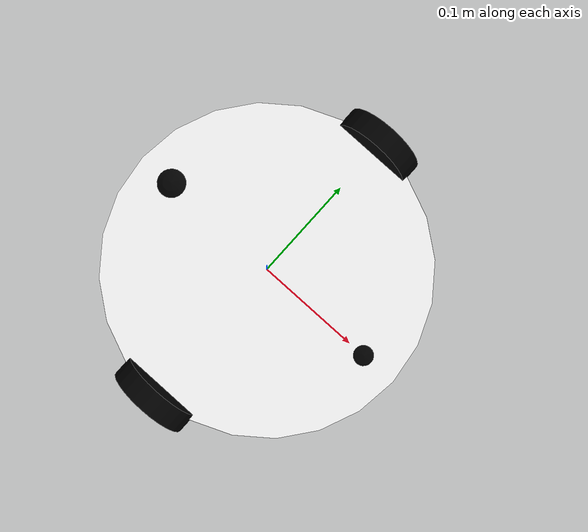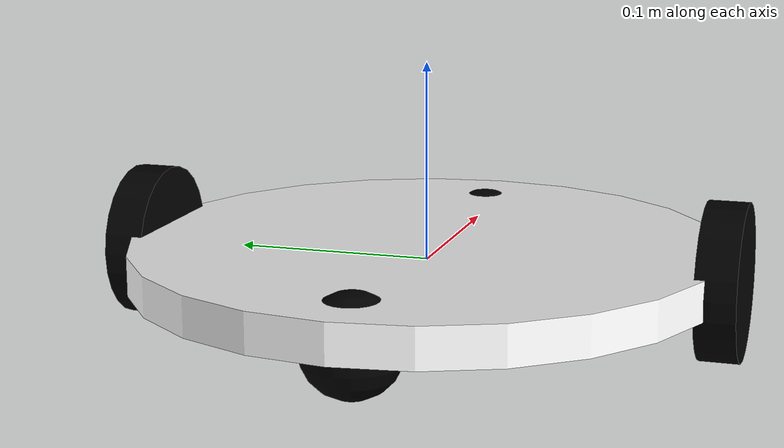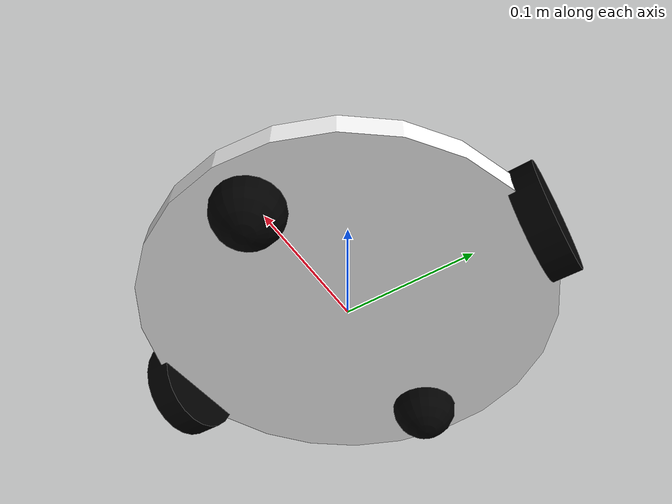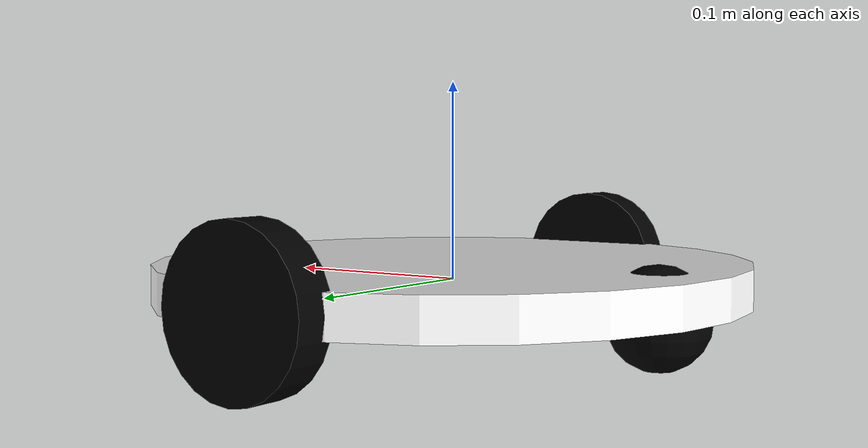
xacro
<?xml version="1.0"?>

<robot name="diff_robot" xmlns:xacro="http://ros.org/wiki/xacro">

    <xacro:include filename="$(find diff_drive_description)/diff_drive_macro.xacro" />

    <xacro:property name="base_radius" value="0.15" />
    <xacro:property name="passive_wheel_height" value="0.04" />
    <xacro:property name="passive_wheel_radius" value="0.025" />
    <xacro:property name="passive_wheel_mass" value="0.5" />
    <xacro:property name="wheel_radius" value="0.039" />
    <xacro:property name="wheel_height" value="0.02" />
    <xacro:property name="wheel_mass" value="2.5" />

	<link name="base_link">
		<inertial>
				<inertia ixx="1.0" ixy="0.0" ixz="0.0" iyy="1.0" iyz="0.0" izz="1.0"/>
			<mass value="5" />
			<origin xyz="0 0 0" />
			<cylinder_inertia  m="5" r="${base_radius}" h="0.02" />
		</inertial>
		<visual>
			<origin xyz="0 0 0" rpy="0 0 0" />
			<geometry>
				<cylinder length="0.02" radius="${base_radius}" />
			</geometry>
			<material name="White" />
		</visual>
		<collision>
			<origin xyz="0 0 0" rpy="0 0 0 " />
			<geometry>
				<cylinder length="0.02" radius="${base_radius}" />
			</geometry>
		</collision>
	</link>

	<xacro:passive_wheel_joint name="passive_wheel_front_joint"
		parent="base_link"
		child="passive_wheel_front_link">
		<origin xyz="0.115 0.0 0.007" rpy="${-M_PI/2} 0 0"/>
	</xacro:passive_wheel_joint>

	<xacro:passive_wheel_link name="passive_wheel_front_link">
			<origin xyz="0 0.02 0" rpy="${M_PI/2} 0 0" />
	</xacro:passive_wheel_link>

	<xacro:passive_wheel_joint
		name="passive_wheel_back_joint"
		parent="base_link"
		child="passive_wheel_back_link">
		<origin xyz="-0.135 0.0 0.009" rpy="${-M_PI/2} 0 0"/>
	</xacro:passive_wheel_joint>

	<xacro:passive_wheel_link
		name="passive_wheel_back_link">
			<origin xyz="0.02 0.02 0 " rpy="${M_PI/2} 0 0" />
	</xacro:passive_wheel_link>

	<xacro:wheel side="right" parent="base_link" translateX="0" translateY="-${base_radius}" />
	<xacro:wheel side="left" parent="base_link" translateX="0" translateY="${base_radius}" />

</robot>

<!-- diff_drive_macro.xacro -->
<robot name="diff_robot" xmlns:xacro="http://www.ros.org/wiki/xacro">

    <xacro:property name="M_PI" value="3.1415926535897931" />
    <!--Material Definition-->
    <material name="Black">
      <color rgba="0.0 0.0 0.0 1.0"/>
    </material>
    <material name="White">
      <color rgba="1.0 1.0 1.0 1.0"/>
    </material>

    <xacro:macro name="cylinder_inertia" params="m r h">
        <inertia  ixx="${m*(3*r*r+h*h)/12}" ixy = "0" ixz = "0"
                iyy="${m*(3*r*r+h*h)/12}" iyz = "0"
                izz="${m*r*r/2}" />
    </xacro:macro>

    <xacro:macro name="passive_wheel_joint" params="name parent child *origin">
      <joint name="${name}" type="fixed" >
        <parent link="${parent}" />
        <child link="${child}" />
        <xacro:insert_block name="origin" />
      </joint>
    </xacro:macro>

    <xacro:macro name="passive_wheel_link" params="name *origin">
        <link name="${name}">
            <visual>
                <xacro:insert_block name="origin" />
                <geometry>
                    <sphere radius="${passive_wheel_radius}" />
                </geometry>
                <material name="Black" />
            </visual>
            <collision>
                <geometry>
                    <sphere radius="${passive_wheel_radius}" />
                </geometry>
                <origin xyz="0 0.02 0" rpy="${M_PI/2} 0 0" />
            </collision>
            <inertial>
                <mass value="${passive_wheel_mass}" />
                    <origin xyz="0 0 0" />
                    <inertia  ixx="0.001" ixy="0.0" ixz="0.0"
                            iyy="0.001" iyz="0.0"
                                izz="0.001" />
            </inertial>
        </link>
    </xacro:macro>

  <xacro:macro name="wheel" params="side parent translateX translateY">
    <link name="${side}_wheel">
      <visual>
        <origin xyz="0 0 0" rpy="${M_PI/2} 0  0 " />
        <geometry>
          <cylinder length="${wheel_height}" radius="${wheel_radius}" />
        </geometry>
              <material name="Black" />
      </visual>
      <collision>
        <origin xyz="0 0 0" rpy="${M_PI/2} 0 0 " />
        <geometry>
          <cylinder length="${wheel_height}" radius="${wheel_radius}" />
        </geometry>
      </collision>
      <inertial>
        <mass value="${wheel_mass}" />
        <origin xyz="0 0 0" />
				<inertia ixx="0.001" ixy="0.0" ixz="0.0"
               iyy="0.001" iyz="0.0"
               izz="0.001" />
      </inertial>
    </link>

    <joint name="${side}_wheel_joint" type="continuous">
      <parent link="${parent}"/>
      <child link="${side}_wheel"/>

        <origin xyz="0 ${translateY} 0" rpy="0 0 0" />
      <axis xyz="0 1 0" rpy="0 0 0" />
      <limit effort="100" velocity="100"/>
      <joint_properties damping="0.0" friction="0.0"/>
    </joint>

  </xacro:macro>
</robot>
